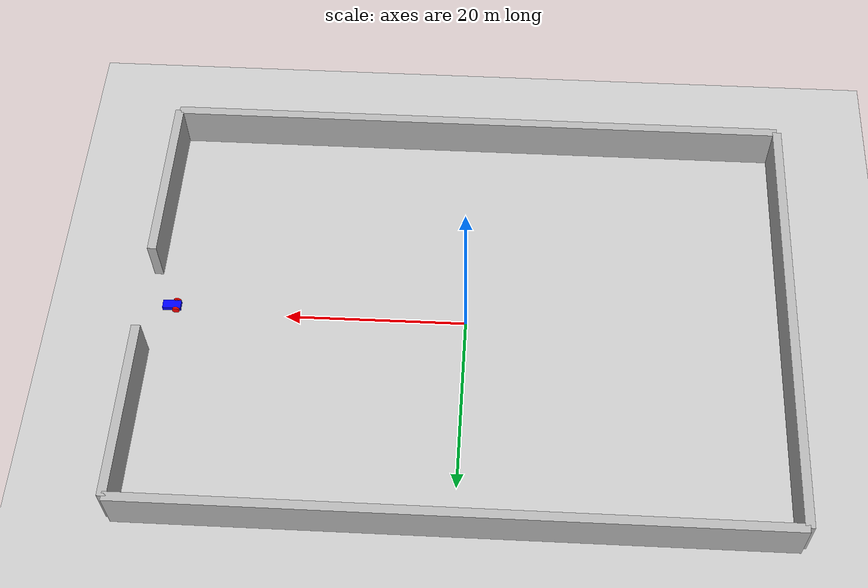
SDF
<sdf version="1.6">
 <world name="particle_emitters">
  <physics name="1ms" type="ode">
   <max_step_size>0.001</max_step_size>
   <real_time_factor>1.0</real_time_factor>
  </physics>
  <plugin filename="libignition-gazebo-imu-system.so" name="ignition::gazebo::systems::Imu"/>
  <plugin filename="libignition-gazebo-sensors-system.so" name="ignition::gazebo::systems::Sensors">
   <render_engine>ogre2</render_engine>
  </plugin>
  <plugin filename="libignition-gazebo-physics-system.so" name="ignition::gazebo::systems::Physics"/>
  <plugin filename="libignition-gazebo-user-commands-system.so" name="ignition::gazebo::systems::UserCommands"/>
  <plugin filename="libignition-gazebo-scene-broadcaster-system.so" name="ignition::gazebo::systems::SceneBroadcaster"/>
  <atmosphere type="adiabatic">
   <temperature>300</temperature>
   <temperature_gradient>0.1</temperature_gradient>
  </atmosphere>
  <light type="directional" name="sun">
   <pose>0 0 10 0 0 0</pose>
   <diffuse>1 1 1 1</diffuse>
   <specular>0.5 0.5 0.5 1</specular>
   <attenuation>
    <range>1000</range>
    <constant>0.9</constant>
    <linear>0.01</linear>
    <quadratic>0.001</quadratic>
   </attenuation>
   <direction>-0.5 0.1 -0.9</direction>
  </light>
  <model name="ground_plane">
   <static>true</static>
   <link name="link">
    <collision name="collision"><geometry><plane><normal>0 0 1</normal></plane></geometry></collision>
    <visual name="visual">
     <geometry><plane><normal>0 0 1</normal><size>100 100</size></plane></geometry>
     <material>
      <ambient>0.8 0.8 0.8 1</ambient>
      <diffuse>0.8 0.8 0.8 1</diffuse>
      <specular>0.8 0.8 0.8 1</specular>
     </material>
    </visual>
   </link>
  </model>
  <include><uri>model://fog_generator</uri></include>
  <include><uri>model://fire_generator</uri></include>
  <include><uri>model://my_robot</uri><pose>32 0 1 0 0 0</pose></include>
  <model name="wall_1">
   <static>1</static>
   <link name="link">
    <collision name="collision"><geometry><box><size>70 1 5</size></box></geometry></collision>
    <visual name="visual"><geometry><box><size>70 1 5</size></box></geometry></visual>
   </link>
   <pose>0 25 2.5 0 0 0</pose>
  </model>
  <model name="wall_2">
   <static>1</static>
   <link name="link">
    <collision name="collision"><geometry><box><size>70 1 5</size></box></geometry></collision>
    <visual name="visual"><geometry><box><size>70 1 5</size></box></geometry></visual>
   </link>
   <pose>0 -25 2.5 0 0 0</pose>
  </model>
  <model name="wall_3">
   <static>1</static>
   <link name="link">
    <collision name="collision"><geometry><box><size>1 20 5</size></box></geometry></collision>
    <visual name="visual"><geometry><box><size>1 20 5</size></box></geometry></visual>
   </link>
   <pose>35 -15 2.5 0 0 0</pose>
  </model>
  <model name="wall_4">
   <static>1</static>
   <link name="link">
    <collision name="collision"><geometry><box><size>1 50 5</size></box></geometry></collision>
    <visual name="visual"><geometry><box><size>1 50 5</size></box></geometry></visual>
   </link>
   <pose>-35 0 2.5 0 0 0</pose>
  </model>
  <model name="wall_5">
   <static>1</static>
   <link name="link">
    <collision name="collision"><geometry><box><size>1 20 5</size></box></geometry></collision>
    <visual name="visual"><geometry><box><size>1 20 5</size></box></geometry></visual>
   </link>
   <pose>35 15 2.5 0 0 0</pose>
  </model>
 </world>
</sdf>

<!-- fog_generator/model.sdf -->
<sdf version="1.6">
  <model name="fog_generator">
    <pose>0 0 0 0 -1.5707 0</pose>
    <static>true</static>
    <link name="fog_link">
      <particle_emitter name="emitter" type="box">
        <emitting>true</emitting>
        <size>10 10 0</size>
        <particle_size>1 1 1</particle_size>
        <lifetime>250</lifetime>
        <min_velocity>0.1</min_velocity>
        <max_velocity>0.2</max_velocity>
        <scale_rate>0.5</scale_rate>
        <rate>5</rate>
        <material>
          <diffuse>0.7 0.7 0.7</diffuse>
          <specular>1.0 1.0 1.0</specular>
          <pbr>
            <metal>
              <albedo_map>materials/textures/fog.png</albedo_map>
            </metal>
          </pbr>
        </material>
        <color_range_image>materials/textures/fogcolors.png</color_range_image>
      </particle_emitter>
    </link>
  </model>
</sdf>

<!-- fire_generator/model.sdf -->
<sdf version="1.6">
  <model name="fire_generator">
    <pose>0 0 0 0 -1.5707 0</pose>
    <static>true</static>
    <link name="fire_link">
      <particle_emitter name="emitter" type="box">
        <emitting>true</emitting>
        <size>0.5 0.5 0.5</size>
        <particle_size>0.1 0.1 0.1</particle_size>
        <lifetime>5</lifetime>
        <min_velocity>0.1</min_velocity>
        <max_velocity>0.2</max_velocity>
        <scale_rate>0.5</scale_rate>
        <rate>50</rate>
        <material>
          <diffuse>0.7 0.7 0.7</diffuse>
          <specular>1.0 1.0 1.0</specular>
          <pbr>
            <metal>
              <albedo_map>materials/textures/fire.png</albedo_map>
            </metal>
          </pbr>
        </material>
        <color_range_image>materials/textures/firecolors.png</color_range_image>
      </particle_emitter>
    </link>
        <plugin
      filename="libignition-gazebo-particle-emitter-system.so"
      name="ignition::gazebo::systems::ParticleEmitter">
    </plugin>
  </model>
</sdf>

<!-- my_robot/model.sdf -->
<sdf version="1.6">
  <model name="my_robot" canonical_link="chassis">

    <frame name="lidar_frame" attached_to="chassis">
      <pose>0.8 0 0.5 0 0 0</pose>
    </frame>

    <link name="chassis">
      <pose relative_to="__model__">0.5 0 0.4 0 0 0</pose>
      <inertial>
        <mass>1.14395</mass>
        <inertia>
          <ixx>0.126164</ixx>
          <ixy>0</ixy>
          <ixz>0</ixz>
          <iyy>0.416519</iyy>
          <iyz>0</iyz>
          <izz>0.481014</izz>
        </inertia>
      </inertial>
      <visual name="visual">
        <geometry>
          <box>
            <size>2.0 1.0 0.5</size>
          </box>
        </geometry>
        <material>
          <ambient>0.0 0.0 1.0 1</ambient>
          <diffuse>0.0 0.0 1.0 1</diffuse>
          <specular>0.0 0.0 1.0 1</specular>
        </material>
      </visual>
      <collision name="collision">
        <geometry>
          <box>
            <size>2.0 1.0 0.5</size>
          </box>
        </geometry>
      </collision>
      <sensor name="imu_sensor" type="imu">
        <always_on>1</always_on>
        <update_rate>1</update_rate>
        <visualize>true</visualize>
        <topic>imu</topic>
      </sensor>
      <sensor name="gpu_lidar" type="gpu_lidar">
        <pose relative_to="lidar_frame">0 0 0 0 0 0</pose>
        <topic>lidar</topic>
        <update_rate>10</update_rate>
        <ray>
          <scan>
            <horizontal>
              <samples>640</samples>
              <resolution>1</resolution>
              <min_angle>-1.396263</min_angle>
              <max_angle>1.396263</max_angle>
            </horizontal>
            <vertical>
              <samples>1</samples>
              <resolution>0.01</resolution>
              <min_angle>0</min_angle>
              <max_angle>0</max_angle>
            </vertical>
          </scan>
          <range>
            <min>0.08</min>
            <max>10.0</max>
            <resolution>0.01</resolution>
          </range>
        </ray>
        <alwaysOn>1</alwaysOn>
        <visualize>true</visualize>
      </sensor>
      <sensor name="thermal_camera_8bit" type="thermal">
  <camera>
    <horizontal_fov>1.047</horizontal_fov>
    <image>
      <width>320</width>
      <height>240</height>
      <format>L8</format>
    </image>
    <clip>
      <near>0.1</near>
      <far>100</far>
    </clip>
  </camera>
  <always_on>1</always_on>
  <update_rate>30</update_rate>
  <visualize>true</visualize>
  <topic>thermal_camera/image</topic>
  <plugin
    filename="ignition-gazebo-thermal-sensor-system"
    name="gz::sim::systems::ThermalSensor">
    <min_temp>253.15</min_temp>
    <max_temp>673.15</max_temp>
    <resolution>3.0</resolution>
  </plugin>
</sensor>

    </link>

    <link name="left_wheel">
      <pose relative_to="chassis">-0.5 0.6 0 -1.5707 0 0</pose>
      <inertial>
        <mass>2</mass>
        <inertia>
          <ixx>0.145833</ixx>
          <ixy>0</ixy>
          <ixz>0</ixz>
          <iyy>0.145833</iyy>
          <iyz>0</iyz>
          <izz>0.125</izz>
        </inertia>
      </inertial>
      <visual name="visual">
        <geometry>
          <cylinder>
            <radius>0.4</radius>
            <length>0.2</length>
          </cylinder>
        </geometry>
        <material>
          <ambient>1.0 0.0 0.0 1</ambient>
          <diffuse>1.0 0.0 0.0 1</diffuse>
          <specular>1.0 0.0 0.0 1</specular>
        </material>
      </visual>
      <collision name="collision">
        <geometry>
          <cylinder>
            <radius>0.4</radius>
            <length>0.2</length>
          </cylinder>
        </geometry>
      </collision>
    </link>

    <link name="right_wheel">
      <pose relative_to="chassis">-0.5 -0.6 0 -1.5707 0 0</pose>
      <inertial>
        <mass>1</mass>
        <inertia>
          <ixx>0.145833</ixx>
          <ixy>0</ixy>
          <ixz>0</ixz>
          <iyy>0.145833</iyy>
          <iyz>0</iyz>
          <izz>0.125</izz>
        </inertia>
      </inertial>
      <visual name="visual">
        <geometry>
          <cylinder>
            <radius>0.4</radius>
            <length>0.2</length>
          </cylinder>
        </geometry>
        <material>
          <ambient>1.0 0.0 0.0 1</ambient>
          <diffuse>1.0 0.0 0.0 1</diffuse>
          <specular>1.0 0.0 0.0 1</specular>
        </material>
      </visual>
      <collision name="collision">
        <geometry>
          <cylinder>
            <radius>0.4</radius>
            <length>0.2</length>
          </cylinder>
        </geometry>
      </collision>
    </link>

    <frame name="caster_frame" attached_to="chassis">
      <pose>0.8 0 -0.2 0 0 0</pose>
    </frame>

    <link name="caster">
      <pose relative_to="caster_frame"/>
      <inertial>
        <mass>1</mass>
        <inertia>
          <ixx>0.1</ixx>
          <ixy>0</ixy>
          <ixz>0</ixz>
          <iyy>0.1</iyy>
          <iyz>0</iyz>
          <izz>0.1</izz>
        </inertia>
      </inertial>
      <visual name="visual">
        <geometry>
          <sphere>
            <radius>0.2</radius>
          </sphere>
        </geometry>
        <material>
          <ambient>0.0 1 0.0 1</ambient>
          <diffuse>0.0 1 0.0 1</diffuse>
          <specular>0.0 1 0.0 1</specular>
        </material>
      </visual>
      <collision name="collision">
        <geometry>
          <sphere>
            <radius>0.2</radius>
          </sphere>
        </geometry>
      </collision>
    </link>

    <joint name="left_wheel_joint" type="revolute">
      <pose relative_to="left_wheel"/>
      <parent>chassis</parent>
      <child>left_wheel</child>
      <axis>
        <xyz expressed_in="__model__">0 1 0</xyz>
        <limit>
          <lower>-1.79769e+308</lower>
          <upper>1.79769e+308</upper>
        </limit>
      </axis>
    </joint>

    <joint name="right_wheel_joint" type="revolute">
      <pose relative_to="right_wheel"/>
      <parent>chassis</parent>
      <child>right_wheel</child>
      <axis>
        <xyz expressed_in="__model__">0 1 0</xyz>
        <limit>
          <lower>-1.79769e+308</lower>
          <upper>1.79769e+308</upper>
        </limit>
      </axis>
    </joint>

    <joint name="caster_wheel" type="ball">
      <parent>chassis</parent>
      <child>caster</child>
    </joint>

    <plugin
      filename="ignition-gazebo-diff-drive-system"
      name="ignition::gazebo::systems::DiffDrive">
      <left_joint>left_wheel_joint</left_joint>
      <right_joint>right_wheel_joint</right_joint>
      <wheel_separation>1.2</wheel_separation>
      <wheel_radius>0.4</wheel_radius>
      <odom_publish_frequency>1</odom_publish_frequency>
      <topic>cmd_vel</topic>
    </plugin>
  </model>
</sdf>
